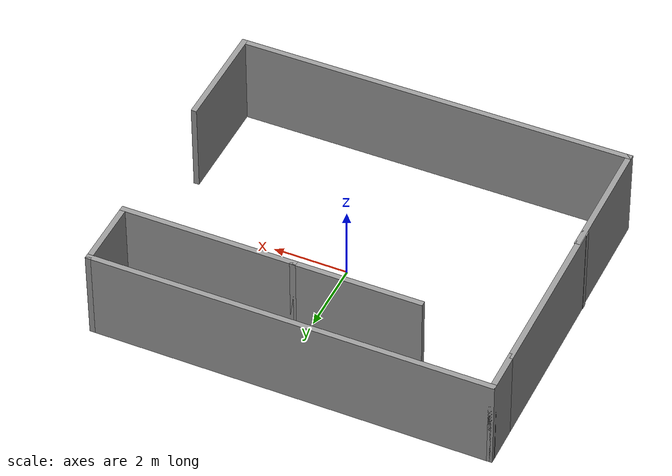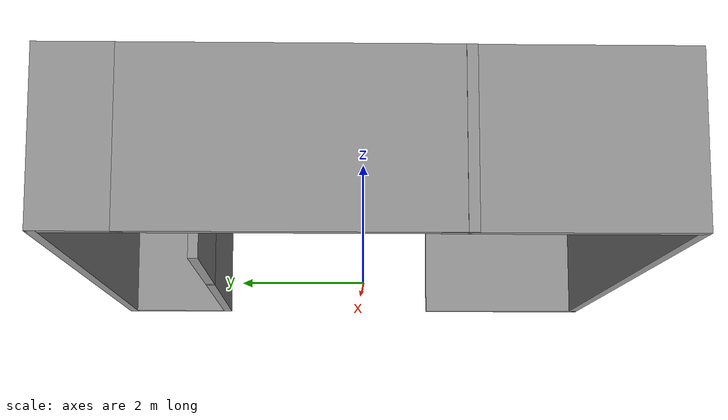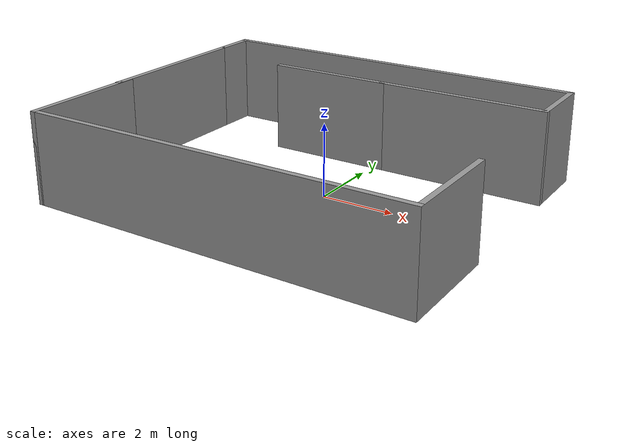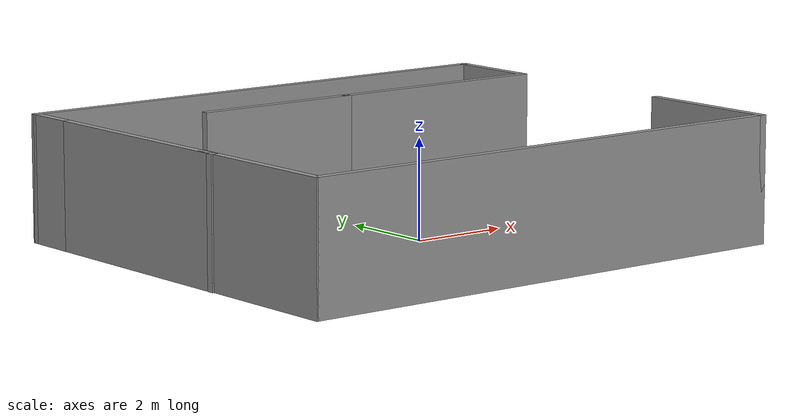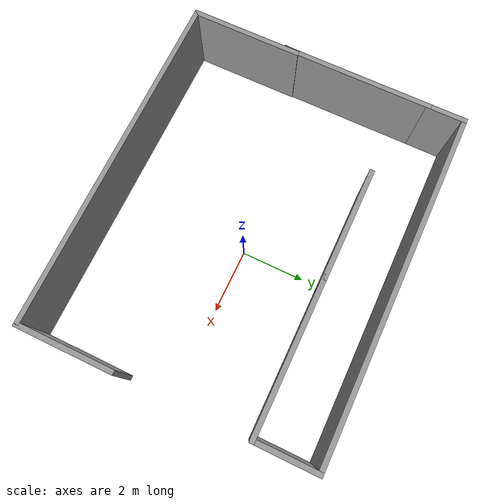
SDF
<?xml version='1.0'?>
<sdf version='1.7'>
  <model name='Untitled'>
    <pose>-0.466331 0.063195 0 0 -0 0</pose>
    <link name='Wall_1'>
      <collision name='Wall_1_Collision'>
        <geometry>
          <box>
            <size>3.5 0.15 2.5</size>
          </box>
        </geometry>
        <pose>0 0 1.25 0 -0 0</pose>
      </collision>
      <visual name='Wall_1_Visual'>
        <pose>0 0 1.25 0 -0 0</pose>
        <geometry>
          <box>
            <size>3.5 0.15 2.5</size>
          </box>
        </geometry>
        <material>
          <script>
            <uri>file://media/materials/scripts/gazebo.material</uri>
            <name>Gazebo/Grey</name>
          </script>
          <ambient>1 1 1 1</ambient>
        </material>
        <meta>
          <layer>0</layer>
        </meta>
      </visual>
      <pose>-5.28367 -2.6782 0 0 -0 -1.5708</pose>
    </link>
    <link name='Wall_10'>
      <collision name='Wall_10_Collision'>
        <geometry>
          <box>
            <size>3 0.15 2.5</size>
          </box>
        </geometry>
        <pose>0 0 1.25 0 -0 0</pose>
      </collision>
      <visual name='Wall_10_Visual'>
        <pose>0 0 1.25 0 -0 0</pose>
        <geometry>
          <box>
            <size>3 0.15 2.5</size>
          </box>
        </geometry>
        <material>
          <script>
            <uri>file://media/materials/scripts/gazebo.material</uri>
            <name>Gazebo/Grey</name>
          </script>
          <ambient>1 1 1 1</ambient>
        </material>
        <meta>
          <layer>0</layer>
        </meta>
      </visual>
      <pose>5.31633 -2.9282 0 0 -0 1.5708</pose>
    </link>
    <link name='Wall_12'>
      <collision name='Wall_12_Collision'>
        <geometry>
          <box>
            <size>4.75 0.15 2.5</size>
          </box>
        </geometry>
        <pose>0 0 1.25 0 -0 0</pose>
      </collision>
      <visual name='Wall_12_Visual'>
        <pose>0 0 1.25 0 -0 0</pose>
        <geometry>
          <box>
            <size>4.75 0.15 2.5</size>
          </box>
        </geometry>
        <material>
          <script>
            <uri>file://media/materials/scripts/gazebo.material</uri>
            <name>Gazebo/Grey</name>
          </script>
          <ambient>1 1 1 1</ambient>
        </material>
        <meta>
          <layer>0</layer>
        </meta>
      </visual>
      <pose>2.99367 2.50319 0 0 -0 3.14159</pose>
    </link>
    <link name='Wall_13'>
      <collision name='Wall_13_Collision'>
        <geometry>
          <box>
            <size>0.16 0.15 2.5</size>
          </box>
        </geometry>
        <pose>0 0 1.25 0 -0 0</pose>
      </collision>
      <visual name='Wall_13_Visual'>
        <pose>0 0 1.25 0 -0 0</pose>
        <geometry>
          <box>
            <size>0.16 0.15 2.5</size>
          </box>
        </geometry>
        <material>
          <script>
            <uri>file://media/materials/scripts/gazebo.material</uri>
            <name>Gazebo/Grey</name>
          </script>
          <ambient>1 1 1 1</ambient>
        </material>
        <meta>
          <layer>0</layer>
        </meta>
      </visual>
      <pose>0.698669 2.5032 0 0 -0 0</pose>
    </link>
    <link name='Wall_14'>
      <collision name='Wall_14_Collision'>
        <geometry>
          <box>
            <size>3.5 0.15 2.5</size>
          </box>
        </geometry>
        <pose>0 0 1.25 0 -0 0</pose>
      </collision>
      <visual name='Wall_14_Visual'>
        <pose>0 0 1.25 0 -0 0</pose>
        <geometry>
          <box>
            <size>3.5 0.15 2.5</size>
          </box>
        </geometry>
        <material>
          <script>
            <uri>file://media/materials/scripts/gazebo.material</uri>
            <name>Gazebo/Grey</name>
          </script>
          <ambient>1 1 1 1</ambient>
        </material>
        <meta>
          <layer>0</layer>
        </meta>
      </visual>
      <pose>-0.971331 2.50319 0 0 -0 3.14159</pose>
    </link>
    <link name='Wall_2'>
      <collision name='Wall_2_Collision'>
        <geometry>
          <box>
            <size>10.75 0.15 2.5</size>
          </box>
        </geometry>
        <pose>0 0 1.25 0 -0 0</pose>
      </collision>
      <visual name='Wall_2_Visual'>
        <pose>0 0 1.25 0 -0 0</pose>
        <geometry>
          <box>
            <size>10.75 0.15 2.5</size>
          </box>
        </geometry>
        <material>
          <script>
            <uri>file://media/materials/scripts/gazebo.material</uri>
            <name>Gazebo/Grey</name>
          </script>
          <ambient>1 1 1 1</ambient>
        </material>
        <meta>
          <layer>0</layer>
        </meta>
      </visual>
      <pose>0.016331 -4.3532 0 0 -0 0</pose>
    </link>
    <link name='Wall_4'>
      <collision name='Wall_4_Collision'>
        <geometry>
          <box>
            <size>0.16 0.15 2.5</size>
          </box>
        </geometry>
        <pose>0 0 1.25 0 -0 0</pose>
      </collision>
      <visual name='Wall_4_Visual'>
        <pose>0 0 1.25 0 -0 0</pose>
        <geometry>
          <box>
            <size>0.16 0.15 2.5</size>
          </box>
        </geometry>
        <material>
          <script>
            <uri>file://media/materials/scripts/gazebo.material</uri>
            <name>Gazebo/Grey</name>
          </script>
          <ambient>1 1 1 1</ambient>
        </material>
        <meta>
          <layer>0</layer>
        </meta>
      </visual>
      <pose>-5.31133 -1.34681 0 0 -0 0</pose>
    </link>
    <link name='Wall_5'>
      <collision name='Wall_5_Collision'>
        <geometry>
          <box>
            <size>4.75 0.15 2.5</size>
          </box>
        </geometry>
        <pose>0 0 1.25 0 -0 0</pose>
      </collision>
      <visual name='Wall_5_Visual'>
        <pose>0 0 1.25 0 -0 0</pose>
        <geometry>
          <box>
            <size>4.75 0.15 2.5</size>
          </box>
        </geometry>
        <material>
          <script>
            <uri>file://media/materials/scripts/gazebo.material</uri>
            <name>Gazebo/Grey</name>
          </script>
          <ambient>1 1 1 1</ambient>
        </material>
        <meta>
          <layer>0</layer>
        </meta>
      </visual>
      <pose>-5.30633 0.953195 0 0 -0 1.5708</pose>
    </link>
    <link name='Wall_6'>
      <collision name='Wall_6_Collision'>
        <geometry>
          <box>
            <size>1.25 0.15 2.5</size>
          </box>
        </geometry>
        <pose>0 0 1.25 0 -0 0</pose>
      </collision>
      <visual name='Wall_6_Visual'>
        <pose>0 0 1.25 0 -0 0</pose>
        <geometry>
          <box>
            <size>1.25 0.15 2.5</size>
          </box>
        </geometry>
        <material>
          <script>
            <uri>file://media/materials/scripts/gazebo.material</uri>
            <name>Gazebo/Grey</name>
          </script>
          <ambient>1 1 1 1</ambient>
        </material>
        <meta>
          <layer>0</layer>
        </meta>
      </visual>
      <pose>-5.30633 3.8032 0 0 -0 1.5708</pose>
    </link>
    <link name='Wall_7'>
      <collision name='Wall_7_Collision'>
        <geometry>
          <box>
            <size>10.75 0.15 2.5</size>
          </box>
        </geometry>
        <pose>0 0 1.25 0 -0 0</pose>
      </collision>
      <visual name='Wall_7_Visual'>
        <pose>0 0 1.25 0 -0 0</pose>
        <geometry>
          <box>
            <size>10.75 0.15 2.5</size>
          </box>
        </geometry>
        <material>
          <script>
            <uri>file://media/materials/scripts/gazebo.material</uri>
            <name>Gazebo/Grey</name>
          </script>
          <ambient>1 1 1 1</ambient>
        </material>
        <meta>
          <layer>0</layer>
        </meta>
      </visual>
      <pose>-0.006331 4.3532 0 0 -0 0</pose>
    </link>
    <link name='Wall_8'>
      <collision name='Wall_8_Collision'>
        <geometry>
          <box>
            <size>2 0.15 2.5</size>
          </box>
        </geometry>
        <pose>0 0 1.25 0 -0 0</pose>
      </collision>
      <visual name='Wall_8_Visual'>
        <pose>0 0 1.25 0 -0 0</pose>
        <geometry>
          <box>
            <size>2 0.15 2.5</size>
          </box>
        </geometry>
        <material>
          <script>
            <uri>file://media/materials/scripts/gazebo.material</uri>
            <name>Gazebo/Grey</name>
          </script>
          <ambient>1 1 1 1</ambient>
        </material>
        <meta>
          <layer>0</layer>
        </meta>
      </visual>
      <pose>5.29367 3.4282 0 0 -0 -1.5708</pose>
    </link>
    <static>1</static>
  </model>
</sdf>
